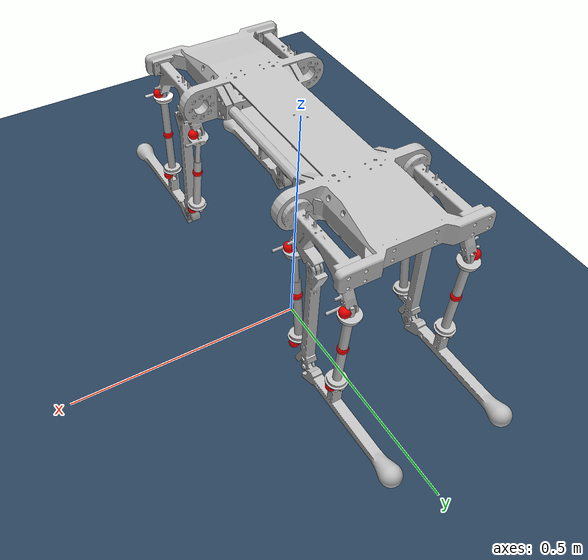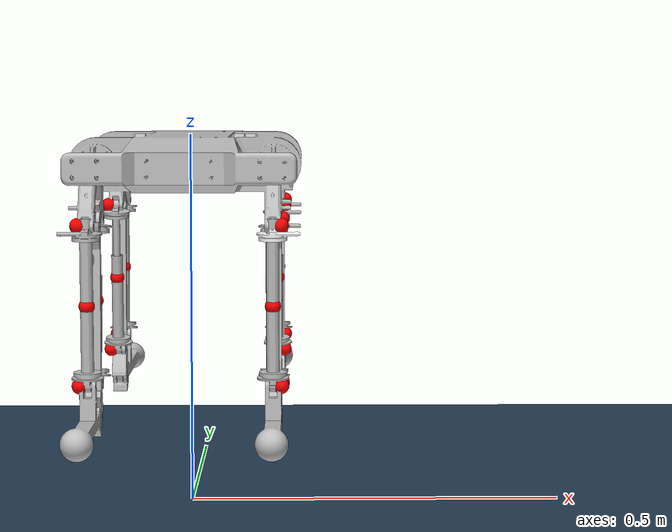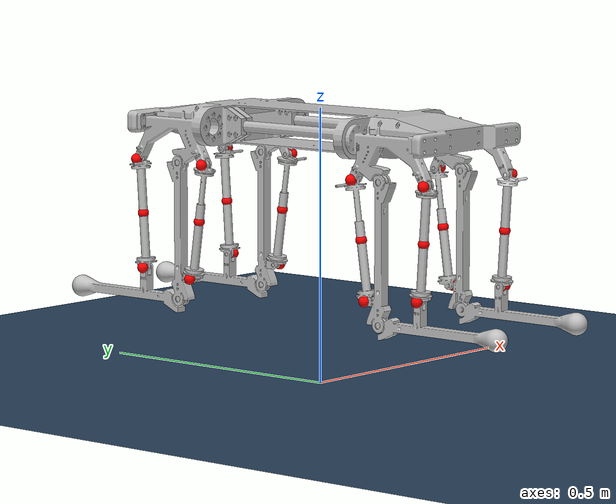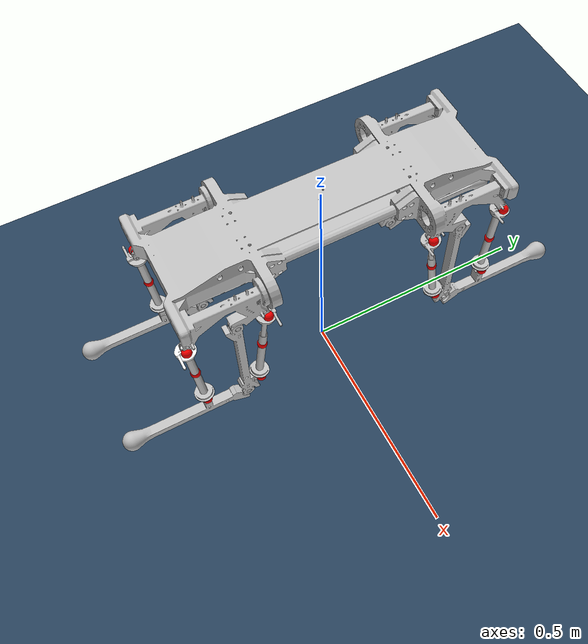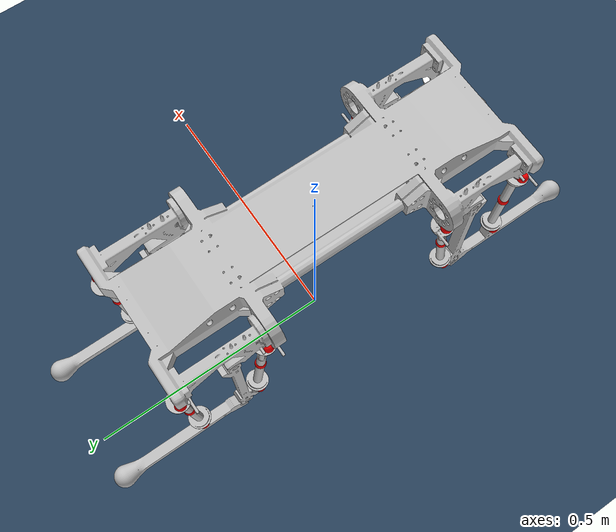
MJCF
<mujoco model="v2_4">
  <compiler angle="radian"/>
  <option solver="PGS" timestep="0.001" />

  <default>
    <geom density="1700"/>
  </default>

  <asset>
    <texture name="grid" type="2d" builtin="checker" rgb1=".1 .2 .3"
      rgb2=".2 .3 .4" width="300" height="300"/>
    <material name="grid" texture="grid" texrepeat="8 8" reflectance=".2"/>

    <mesh name="base_link" file="base_link.STL"/>
    <mesh name="LF_Thigh" file="LF_Thigh.STL"/>
    <mesh name="LF_Calf" file="LF_Calf.STL"/>
    <mesh name="RF_Thigh" file="RF_Thigh.STL"/>
    <mesh name="RF_Calf" file="RF_Calf.STL"/>
    <mesh name="LB_Thigh" file="LB_Thigh.STL"/>
    <mesh name="LB_Calf" file="LB_Calf.STL"/>
    <mesh name="RB_Thigh" file="RB_Thigh.STL"/>
    <mesh name="RB_Calf" file="RB_Calf.STL"/>
    <mesh name="LF_MAA_UPLink" file="LF_MAA_UPLink.STL"/>
    <mesh name="LF_MAA_FM_Link" file="LF_MAA_FM_Link.STL"/>
    <mesh name="LF_MAA_LOLink" file="LF_MAA_LOLink.STL"/>
    <mesh name="RF_MAA_UPLink" file="RF_MAA_UPLink.STL"/>
    <mesh name="RF_MAA_FM_Link" file="RF_MAA_FM_Link.STL"/>
    <mesh name="RF_MAA_LOLink" file="RF_MAA_LOLink.STL"/>
    <mesh name="LB_MAA_UPLink" file="LB_MAA_UPLink.STL"/>
    <mesh name="LB_MAA_FM_Link" file="LB_MAA_FM_Link.STL"/>
    <mesh name="LB_MAA_LOLink" file="LB_MAA_LOLink.STL"/>
    <mesh name="RB_MAA_UPLink" file="RB_MAA_UPLink.STL"/>
    <mesh name="RB_MAA_FM_Link" file="RB_MAA_FM_Link.STL"/>
    <mesh name="RB_MAA_LOLink" file="RB_MAA_LOLink.STL"/>
    <mesh name="LF_BAA_UPLink" file="LF_BAA_UPLink.STL"/>
    <mesh name="LF_BAA_FM_Link" file="LF_BAA_FM_Link.STL"/>
    <mesh name="LF_BAA_LOLink" file="LF_BAA_LOLink.STL"/>
    <mesh name="RF_BAA_UPLink" file="RF_BAA_UPLink.STL"/>
    <mesh name="RF_BAA_FM_Link" file="RF_BAA_FM_Link.STL"/>
    <mesh name="RF_BAA_LOLink" file="RF_BAA_LOLink.STL"/>
    <mesh name="LB_BAA_UPLink" file="LB_BAA_UPLink.STL"/>
    <mesh name="LB_BAA_FM_Link" file="LB_BAA_FM_Link.STL"/>
    <mesh name="LB_BAA_LOLink" file="LB_BAA_LOLink.STL"/>
    <mesh name="RB_BAA_UPLink" file="RB_BAA_UPLink.STL"/>
    <mesh name="RB_BAA_FM_LINK" file="RB_BAA_FM_LINK.STL"/>
    <mesh name="RB_BAA_LOLink" file="RB_BAA_LOLink.STL"/>
  </asset>

  <worldbody>
    <light name="top" pos="0 0 10"/>
    <geom size="10 10 .01" type="plane" material="grid"/>
    <body name="base" pos="0 0 0.5">
    <freejoint/>
    <geom type="mesh" rgba="0.75294 0.75294 0.75294 1" mesh="base_link" mass="0.2"/>
    <body name="LF_Thigh" pos="-0.1245 0.235 -0.105">
      <joint name="LF_Shoulder" pos="0 0 0" axis="1 0 0" range="-1.046 1.046"/>
      <geom type="mesh" rgba="0.75294 0.75294 0.75294 1" mesh="LF_Thigh" mass="0.086" contype="0" conaffinity="0"/>
      <body name="LF_Calf" pos="0 0 -0.25">
        <joint name="LF_Elbow" pos="0 0 0" axis="1 0 0" range="-1.27 0.5233333333"/>
        <geom type="mesh" rgba="0.75294 0.75294 0.75294 1" mesh="LF_Calf" mass="0.1033" friction="1 0.005 0.0001"/>
      </body>
    </body>
    <body name="RF_Thigh" pos="0.1245 0.235 -0.105">
      <joint name="RF_Shoulder" pos="0 0 0" axis="-1 0 0" range="-1.046 1.046"/>
      <geom type="mesh" rgba="0.75294 0.75294 0.75294 1" mesh="RF_Thigh" mass="0.086" contype="0" conaffinity="0"/>
      <body name="RF_Calf" pos="0 0 -0.25">
        <joint name="RF_Elbow" pos="0 0 0" axis="-1 0 0" range="-1.27 0.5233333333"/>
        <geom type="mesh" rgba="0.75294 0.75294 0.75294 1" mesh="RF_Calf" mass="0.1033" friction="1 0.005 0.0001"/>
      </body>
    </body>
    <body name="LB_Thigh" pos="-0.125 -0.235 -0.105">
      <joint name="LB_Shoulder" pos="0 0 0" axis="1 0 0" range="-1.046 1.046"/>
      <geom type="mesh" rgba="0.752941 0.752941 0.752941 1" mesh="LB_Thigh" mass="0.086" contype="0" conaffinity="0"/>
      <body name="LB_Calf" pos="0.0005 0 -0.25">
        <joint name="LB_Elbow" pos="0 0 0" axis="1 0 0" range="-0.5233333333 1.27"/>
        <geom type="mesh" rgba="0.752941 0.752941 0.752941 1" mesh="LB_Calf" mass="0.1033" friction="1 0.005 0.0001"/>
      </body>
    </body>
    <body name="RB_Thigh" pos="0.1245 -0.235 -0.105">
      <joint name="RB_Shoulder" pos="0 0 0" axis="-1 0 0" range="-1.046 1.046"/>
      <geom type="mesh" rgba="0.752941 0.752941 0.752941 1" mesh="RB_Thigh" mass="0.086" contype="0" conaffinity="0"/>
      <body name="RB_Calf" pos="0 0 -0.25">
        <joint name="RB_Elbow" pos="0 0 0" axis="-1 0 0" range="-0.5233333333 1.27"/>
        <geom type="mesh" rgba="0.752941 0.752941 0.752941 1" mesh="RB_Calf" mass="0.1033" friction="1 0.005 0.0001"/>
      </body>
    </body>
    <body name="LF_MAA_UPLink" pos="-0.125 0.175 -0.105">
      <joint name="LF_MAA_UPJoint" pos="0 0 0" axis="1 0 0"/>
      <geom type="mesh" rgba="0.752941 0.752941 0.752941 1" mesh="LF_MAA_UPLink" mass="0.001" contype="0" conaffinity="0"/>
      <geom type="sphere" size="0.01" rgba="1 0 0 1" mass="0.03091666667" contype="0" conaffinity="0"/>
      <body name="LF_MAA_FM_Link" pos="0.01 0.015 -0.105">
        <joint name="LF_MAA_SlideJoint" pos="0 0 0" axis="0 0.141421 -0.989949" type="slide" damping="22" stiffness="740" springref="-0.019066"/>
        <geom type="mesh" rgba="1 0 0 1" mesh="LF_MAA_FM_Link" mass="0.001" contype="0" conaffinity="0"/>
        <geom type="sphere" size="0.01" rgba="1 0 0 1" mass="0.1236666667" contype="0" conaffinity="0"/>
        <body name="LF_MAA_LOLink" pos="-0.01 0.015 -0.105">
          <joint name="LF_MAA_FM_SlideJoint" pos="0 0 0" axis="0 0.14142 -0.98995" type="slide" damping="22" stiffness="740" springref="-0.019066"/>
          <geom type="mesh" rgba="0.752941 0.752941 0.752941 1" mesh="LF_MAA_LOLink" mass="0.001" contype="0" conaffinity="0"/>
          <geom type="sphere" size="0.01" rgba="1 0 0 1" mass="0.03091666667" contype="0" conaffinity="0"/>
        </body>
      </body>
    </body>
    <body name="RF_MAA_UPLink" pos="0.125 0.175 -0.105">
      <joint name="RF_MAA_UPJoint" pos="0 0 0" axis="-1 0 0"/>
      <geom type="mesh" rgba="0.752941 0.752941 0.752941 1" mesh="RF_MAA_UPLink" mass="0.001" contype="0" conaffinity="0"/>
      <geom type="sphere" size="0.01" rgba="1 0 0 1" mass="0.03091666667" contype="0" conaffinity="0"/>
      <body name="RF_MAA_FM_Link" pos="-0.01 0.015 -0.105">
        <joint name="RF_MAA_SlideJoint" pos="0 0 0" axis="0 0.141421 -0.989949" type="slide" damping="22" stiffness="740" springref="-0.019066"/>
        <geom type="mesh" rgba="1 0 0 1" mesh="RF_MAA_FM_Link" mass="0.001" contype="0" conaffinity="0"/>
        <geom type="sphere" size="0.01" rgba="1 0 0 1" mass="0.1236666667" contype="0" conaffinity="0"/>
        <body name="RF_MAA_LOLink" pos="0.01 0.015 -0.105">
          <joint name="RF_MAA_FM_SlideJoint" pos="0 0 0" axis="0 0.141421 -0.989949" type="slide" damping="22" stiffness="740" springref="-0.019066"/>
          <geom type="mesh" rgba="0.752941 0.752941 0.752941 1" mesh="RF_MAA_LOLink" mass="0.001" contype="0" conaffinity="0"/>
          <geom type="sphere" size="0.01" rgba="1 0 0 1" mass="0.03091666667" contype="0" conaffinity="0"/>
        </body>
      </body>
    </body>
    <body name="LB_MAA_UPLink" pos="-0.125 -0.175 -0.105">
      <joint name="LB_MAA_UPJoint" pos="0 0 0" axis="1 0 0"/>
      <geom type="mesh" rgba="0.752941 0.752941 0.752941 1" mesh="LB_MAA_UPLink" mass="0.001" contype="0" conaffinity="0"/>
      <geom type="sphere" size="0.01" rgba="1 0 0 1" mass="0.03091666667" contype="0" conaffinity="0"/>
      <body name="LB_MAA_FM_Link" pos="0.01 -0.015 -0.105">
        <joint name="LB_MAA_SlideJoint" pos="0 0 0" axis="0 -0.141421 -0.989949" type="slide" damping="22" stiffness="740" springref="-0.019066"/>
        <geom type="mesh" rgba="1 0 0 1" mesh="LB_MAA_FM_Link" mass="0.001" contype="0" conaffinity="0"/>
        <geom type="sphere" size="0.01" rgba="1 0 0 1" mass="0.1236666667" contype="0" conaffinity="0"/>
        <body name="LB_MAA_LOLink" pos="-0.01 -0.015 -0.105">
          <joint name="LB_MAA_FM_SlideJoint" pos="0 0 0" axis="0 -0.14142 -0.98995" type="slide" damping="22" stiffness="740" springref="-0.019066"/>
          <geom type="mesh" rgba="0.752941 0.752941 0.752941 1" mesh="LB_MAA_LOLink" mass="0.001" contype="0" conaffinity="0"/>
          <geom type="sphere" size="0.01" rgba="1 0 0 1" mass="0.03091666667" contype="0" conaffinity="0"/>
        </body>
      </body>
    </body>
    <body name="RB_MAA_UPLink" pos="0.125 -0.175 -0.105">
      <joint name="RB_MAA_UpJoint" pos="0 0 0" axis="-1 0 0"/>
      <geom type="mesh" rgba="0.752941 0.752941 0.752941 1" mesh="RB_MAA_UPLink" mass="0.001" contype="0" conaffinity="0"/>
      <geom type="sphere" size="0.01" rgba="1 0 0 1" mass="0.03091666667" contype="0" conaffinity="0"/>
      <body name="RB_MAA_FM_Link" pos="-0.01 -0.015 -0.105">
        <joint name="RB_MAA_SlideJoint" pos="0 0 0" axis="0 -0.141421 -0.989949" type="slide" damping="22" stiffness="740" springref="-0.019066"/>
        <geom type="mesh" rgba="1 0 0 1" mesh="RB_MAA_FM_Link"  mass="0.001" contype="0" conaffinity="0"/>
        <geom type="sphere" size="0.01" rgba="1 0 0 1" mass="0.1236666667" contype="0" conaffinity="0"/>
        <body name="RB_MAA_LOLink" pos="0.01 -0.015 -0.105">
          <joint name="RB_MAA_FM_SlideJoint" pos="0 0 0" axis="0 -0.141421 -0.989949" type="slide" damping="22" stiffness="740" springref="-0.019066"/>
          <geom type="mesh" rgba="0.752941 0.752941 0.752941 1" mesh="RB_MAA_LOLink" mass="0.001" contype="0" conaffinity="0"/>
          <geom type="sphere" size="0.01" rgba="1 0 0 1" mass="0.03091666667" contype="0" conaffinity="0"/>
        </body>
      </body>
    </body>
    <body name="LF_BAA_UPLink" pos="-0.125 0.335 -0.105">
      <joint name="LF_BAA_UpJoint" pos="0 0 0" axis="1 0 0"/>
      <geom type="mesh" rgba="0.752941 0.752941 0.752941 1" mesh="LF_BAA_UPLink" mass="0.001" contype="0" conaffinity="0"/>
      <geom type="sphere" size="0.01" rgba="1 0 0 1" mass="0.04498333333" contype="0" conaffinity="0"/>
      <body name="LF_BAA_FM_Link" pos="0.01 -0.00669873 -0.1">
        <joint name="LF_BAA_SlideJoint" pos="0 0 0" axis="0 -0.0668375 -0.997764" type="slide" damping="22" stiffness="600" springref="0.02578"/>
        <geom type="mesh" rgba="1 0 0 1" mesh="LF_BAA_FM_Link" mass="0.001" contype="0" conaffinity="0"/>
        <geom type="sphere" size="0.01" rgba="1 0 0 1" mass="0.1799333333" contype="0" conaffinity="0"/>
        <body name="LF_BAA_LOLink" pos="-0.01 -0.00669873 -0.1">
          <joint name="LF_BAA_FM_SlideJoint" pos="0 0 0" axis="0 -0.0668375 -0.997764" type="slide" damping="22" stiffness="600" springref="0.02578"/>
          <geom type="mesh" rgba="0.752941 0.752941 0.752941 1" mesh="LF_BAA_LOLink" mass="0.001" contype="0" conaffinity="0"/>
          <geom type="sphere" size="0.01" rgba="1 0 0 1" mass="0.04498333333" contype="0" conaffinity="0"/>
        </body>
      </body>
    </body>
    <body name="RF_BAA_UPLink" pos="0.125 0.335 -0.105">
      <joint name="RF_BAA_UpJoint" pos="0 0 0" axis="-1 0 0"/>
      <geom type="mesh" rgba="0.75294 0.75294 0.75294 1" mesh="RF_BAA_UPLink" mass="0.001" contype="0" conaffinity="0"/>
      <geom type="sphere" size="0.01" rgba="1 0 0 1" mass="0.04498333333" contype="0" conaffinity="0"/>
      <body name="RF_BAA_FM_Link" pos="-0.01 -0.00669873 -0.1">
        <joint name="RF_BAA_SlideJoint" pos="0 0 0" axis="0 -0.0668375 -0.997764" type="slide" damping="22" stiffness="600" springref="0.02578"/>
        <geom type="mesh" rgba="1 0 0 1" mesh="RF_BAA_FM_Link" mass="0.001" contype="0" conaffinity="0"/>
        <geom type="sphere" size="0.01" rgba="1 0 0 1" mass="0.1799333333" contype="0" conaffinity="0"/>
        <body name="RF_BAA_LOLink" pos="0.01 -0.00669873 -0.1">
          <joint name="RF_BAA_FM_SlideJoint" pos="0 0 0" axis="0 -0.0668375 -0.997764" type="slide" damping="22" stiffness="600" springref="0.02578"/>
          <geom type="mesh" rgba="0.752941 0.752941 0.752941 1" mesh="RF_BAA_LOLink" mass="0.001" contype="0" conaffinity="0"/>
          <geom type="sphere" size="0.01" rgba="1 0 0 1" mass="0.04498333333" contype="0" conaffinity="0"/>
        </body>
      </body>
    </body>
    <body name="LB_BAA_UPLink" pos="-0.125 -0.335 -0.105">
      <joint name="LB_BAA_UpJoint" pos="0 0 0" axis="1 0 0"/>
      <geom type="mesh" rgba="0.75294 0.75294 0.75294 1" mesh="LB_BAA_UPLink" mass="0.001" contype="0" conaffinity="0"/>
      <geom type="sphere" size="0.01" rgba="1 0 0 1" mass="0.04498333333" contype="0" conaffinity="0"/>
      <body name="LB_BAA_FM_Link" pos="0.01 0.00669873 -0.1">
        <joint name="LB_BAA_SlideJoint" pos="0 0 0" axis="0 0.0668375 -0.997764" type="slide" damping="22" stiffness="600" springref="0.02578"/>
        <geom type="mesh" rgba="1 0 0 1" mesh="LB_BAA_FM_Link" mass="0.001" contype="0" conaffinity="0"/>
        <geom type="sphere" size="0.01" rgba="1 0 0 1" mass="0.1799333333" contype="0" conaffinity="0"/>
        <body name="LB_BAA_LOLink" pos="-0.01 0.00669873 -0.1">
          <joint name="LB_BAA_FM_SlideJoint" pos="0 0 0" axis="0 0.0668375 -0.997764" type="slide" damping="22" stiffness="600" springref="0.02578"/>
          <geom type="mesh" rgba="0.75294 0.75294 0.75294 1" mesh="LB_BAA_LOLink" mass="0.001" contype="0" conaffinity="0"/>
          <geom type="sphere" size="0.01" rgba="1 0 0 1" mass="0.04498333333" contype="0" conaffinity="0"/>
        </body>
      </body>
    </body>
    <body name="RB_BAA_UPLink" pos="0.125 -0.335 -0.105">
      <joint name="RB_BAA_UpJoint" pos="0 0 0" axis="-1 0 0"/>
      <geom type="mesh" rgba="1 1 1 1" mesh="RB_BAA_UPLink" mass="0.001" contype="0" conaffinity="0"/>
      <geom type="sphere" size="0.01" rgba="1 0 0 1" mass="0.04498333333" contype="0" conaffinity="0"/>
      <body name="RB_BAA_FM_LINK" pos="-0.01 0.00669873 -0.1">
        <joint name="RB_BAA_SlideJoint" pos="0 0 0" axis="0 0.0668375 -0.997764" type="slide" damping="22" stiffness="600" springref="0.02578"/>
        <geom type="mesh" rgba="1 0 0 1" mesh="RB_BAA_FM_LINK" mass="0.001" contype="0" conaffinity="0"/>
        <geom type="sphere" size="0.01" rgba="1 0 0 1" mass="0.1799333333" contype="0" conaffinity="0"/>
        <body name="RB_BAA_LOLink" pos="0.01 0.00669873 -0.1">
          <joint name="RB_BAA_FM_SlideJoint" pos="0 0 0" axis="0 0.0668375 -0.997764" type="slide" damping="22" stiffness="600" springref="0.02578"/>
          <geom type="mesh" rgba="0.75294 0.75294 0.75294 1" mesh="RB_BAA_LOLink" mass="0.001" contype="0" conaffinity="0"/>
          <geom type="sphere" size="0.01" rgba="1 0 0 1" mass="0.04498333333" contype="0" conaffinity="0"/>
        </body>
      </body>
    </body>

    </body>
  </worldbody>

  <!-- 增加在RB_BAA_LowerJoint等关节中加入8个位置控制器，要求增加位置限制 -->
  <actuator>

    <general joint="RF_MAA_SlideJoint" ctrllimited="true" ctrlrange="-300 300" />
    <general joint="LF_MAA_SlideJoint" ctrllimited="true" ctrlrange="-300 300" />
    <general joint="RB_MAA_SlideJoint" ctrllimited="true" ctrlrange="-300 300" />
    <general joint="LB_MAA_SlideJoint" ctrllimited="true" ctrlrange="-300 300" />

    <general joint="RF_MAA_FM_SlideJoint" ctrllimited="true" ctrlrange="-300 300" />
    <general joint="LF_MAA_FM_SlideJoint" ctrllimited="true" ctrlrange="-300 300" />
    <general joint="RB_MAA_FM_SlideJoint" ctrllimited="true" ctrlrange="-300 300" />
    <general joint="LB_MAA_FM_SlideJoint" ctrllimited="true" ctrlrange="-300 300" />

  </actuator>

  <!-- 建立并联关系，如 RB_BAA_LOLink 应该与 RB_Calf 连接 -->
  <equality>
    <connect name="RB_BAA_LOLink" body1="RB_BAA_LOLink" body2="RB_Calf" anchor="0 0 0" solref="0.001 1" solimp="0.999 0.9995 0.001"/>
    <connect name="LB_BAA_LOLink" body1="LB_BAA_LOLink" body2="LB_Calf" anchor="0 0 0" solref="0.001 1" solimp="0.999 0.9995 0.001"/>
    <connect name="RF_BAA_LOLink" body1="RF_BAA_LOLink" body2="RF_Calf" anchor="0 0 0" solref="0.001 1" solimp="0.999 0.9995 0.001"/>
    <connect name="LF_BAA_LOLink" body1="LF_BAA_LOLink" body2="LF_Calf" anchor="0 0 0" solref="0.001 1" solimp="0.999 0.9995 0.001"/>
    <connect name="RB_MAA_LOLink" body1="RB_MAA_LOLink" body2="RB_Thigh" anchor="0 0 0" solref="0.001 1" solimp="0.999 0.9995 0.001"/>
    <connect name="LB_MAA_LOLink" body1="LB_MAA_LOLink" body2="LB_Thigh" anchor="0 0 0" solref="0.001 1" solimp="0.999 0.9995 0.001"/>
    <connect name="RF_MAA_LOLink" body1="RF_MAA_LOLink" body2="RF_Thigh" anchor="0 0 0" solref="0.001 1" solimp="0.999 0.9995 0.001"/>
    <connect name="LF_MAA_LOLink" body1="LF_MAA_LOLink" body2="LF_Thigh" anchor="0 0 0" solref="0.001 1" solimp="0.999 0.9995 0.001"/>

    <!-- FM 的相等约束 -->
    <joint name="LF_MAA_FM" joint1="LF_MAA_SlideJoint" joint2="LF_MAA_FM_SlideJoint" solimp="0.95 0.99 0.00001"/>
    <joint name="RF_MAA_FM" joint1="RF_MAA_SlideJoint" joint2="RF_MAA_FM_SlideJoint" solimp="0.95 0.99 0.00001"/>
    <joint name="LB_MAA_FM" joint1="LB_MAA_SlideJoint" joint2="LB_MAA_FM_SlideJoint" solimp="0.95 0.99 0.00001"/>
    <joint name="RB_MAA_FM" joint1="RB_MAA_SlideJoint" joint2="RB_MAA_FM_SlideJoint" solimp="0.95 0.99 0.00001"/>
    <joint name="LF_BAA_FM" joint1="LF_BAA_SlideJoint" joint2="LF_BAA_FM_SlideJoint" solimp="0.95 0.99 0.00001"/>
    <joint name="RF_BAA_FM" joint1="RF_BAA_SlideJoint" joint2="RF_BAA_FM_SlideJoint" solimp="0.95 0.99 0.00001"/>
    <joint name="LB_BAA_FM" joint1="LB_BAA_SlideJoint" joint2="LB_BAA_FM_SlideJoint" solimp="0.95 0.99 0.00001"/>
    <joint name="RB_BAA_FM" joint1="RB_BAA_SlideJoint" joint2="RB_BAA_FM_SlideJoint" solimp="0.95 0.99 0.00001"/>
  </equality>

  <!-- sensor -->
  <sensor>
    <jointpos joint="LB_Shoulder" />
    <jointvel joint="LB_Shoulder" />
    <jointpos joint="LB_Elbow" />
    <jointvel joint="LB_Elbow" />
  </sensor>

</mujoco>
